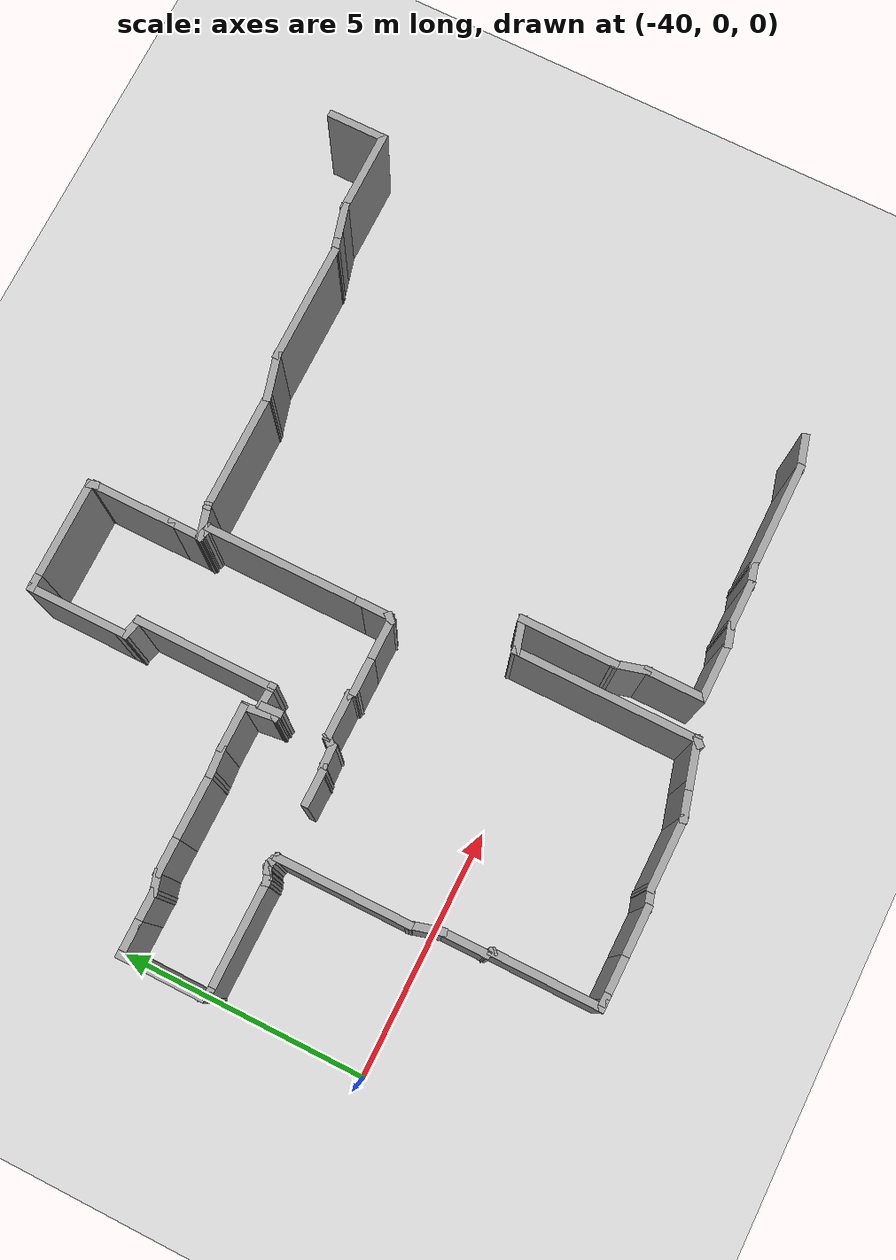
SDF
<sdf version="1.7">
 <world name="default">
  <model name="ground_plane">
   <static>1</static>
   <link name="link">
    <collision name="collision">
     <geometry><plane><normal>0 0 1</normal><size>100 100</size></plane></geometry>
     <surface><friction><ode><mu>100</mu><mu2>50</mu2></ode></friction></surface>
    </collision>
    <visual name="visual">
     <cast_shadows>0</cast_shadows>
     <geometry><plane><normal>0 0 1</normal><size>100 100</size></plane></geometry>
     <material>
      <script><uri>file://media/materials/scripts/gazebo.material</uri><name>Gazebo/Grey</name></script>
     </material>
    </visual>
   </link>
  </model>
  <model name="robovisor_env2">
   <pose>-12.9435 -0.483334 0 0 -0 3.14</pose>
   <link name="Wall_175">
    <collision name="Wall_175_Collision">
     <geometry><box><size>0.75 0.15 2.5</size></box></geometry>
     <pose>0 0 1.25 0 -0 0</pose>
    </collision>
    <visual name="Wall_175_Visual">
     <pose>0 0 1.25 0 -0 0</pose>
     <geometry><box><size>0.75 0.15 2.5</size></box></geometry>
     <material>
      <script><uri>file://media/materials/scripts/gazebo.material</uri><name>Gazebo/Grey</name></script>
      <ambient>1 1 1 1</ambient>
     </material>
     <meta><layer>0</layer></meta>
    </visual>
    <pose>13.3047 1.78761 0 0 -0 0.261799</pose>
   </link>
   <link name="Wall_176">
    <collision name="Wall_176_Collision">
     <geometry><box><size>2.25 0.15 2.5</size></box></geometry>
     <pose>0 0 1.25 0 -0 0</pose>
    </collision>
    <visual name="Wall_176_Visual">
     <pose>0 0 1.25 0 -0 0</pose>
     <geometry><box><size>2.25 0.15 2.5</size></box></geometry>
     <material>
      <script><uri>file://media/materials/scripts/gazebo.material</uri><name>Gazebo/Grey</name></script>
      <ambient>1 1 1 1</ambient>
     </material>
     <meta><layer>0</layer></meta>
    </visual>
    <pose>14.6445 1.86525 0 0 -0 0</pose>
   </link>
   <link name="Wall_177">
    <collision name="Wall_177_Collision">
     <geometry><box><size>0.5 0.15 2.5</size></box></geometry>
     <pose>0 0 1.25 0 -0 0</pose>
    </collision>
    <visual name="Wall_177_Visual">
     <pose>0 0 1.25 0 -0 0</pose>
     <geometry><box><size>0.5 0.15 2.5</size></box></geometry>
     <material>
      <script><uri>file://media/materials/scripts/gazebo.material</uri><name>Gazebo/Grey</name></script>
      <ambient>1 1 1 1</ambient>
     </material>
     <meta><layer>0</layer></meta>
    </visual>
    <pose>15.8635 1.91055 0 0 -0 0.261799</pose>
   </link>
   <link name="Wall_178">
    <collision name="Wall_178_Collision">
     <geometry><box><size>1 0.15 2.5</size></box></geometry>
     <pose>0 0 1.25 0 -0 0</pose>
    </collision>
    <visual name="Wall_178_Visual">
     <pose>0 0 1.25 0 -0 0</pose>
     <geometry><box><size>1 0.15 2.5</size></box></geometry>
     <material>
      <script><uri>file://media/materials/scripts/gazebo.material</uri><name>Gazebo/Grey</name></script>
      <ambient>1 1 1 1</ambient>
     </material>
     <meta><layer>0</layer></meta>
    </visual>
    <pose>16.4576 1.95584 0 0 -0 0</pose>
   </link>
   <link name="Wall_179">
    <collision name="Wall_179_Collision">
     <geometry><box><size>0.5 0.15 2.5</size></box></geometry>
     <pose>0 0 1.25 0 -0 0</pose>
    </collision>
    <visual name="Wall_179_Visual">
     <pose>0 0 1.25 0 -0 0</pose>
     <geometry><box><size>0.5 0.15 2.5</size></box></geometry>
     <material>
      <script><uri>file://media/materials/scripts/gazebo.material</uri><name>Gazebo/Grey</name></script>
      <ambient>1 1 1 1</ambient>
     </material>
     <meta><layer>0</layer></meta>
    </visual>
    <pose>17.0516 2.00113 0 0 -0 0.261799</pose>
   </link>
   <link name="Wall_180">
    <collision name="Wall_180_Collision">
     <geometry><box><size>1.25 0.15 2.5</size></box></geometry>
     <pose>0 0 1.25 0 -0 0</pose>
    </collision>
    <visual name="Wall_180_Visual">
     <pose>0 0 1.25 0 -0 0</pose>
     <geometry><box><size>1.25 0.15 2.5</size></box></geometry>
     <material>
      <script><uri>file://media/materials/scripts/gazebo.material</uri><name>Gazebo/Grey</name></script>
      <ambient>1 1 1 1</ambient>
     </material>
     <meta><layer>0</layer></meta>
    </visual>
    <pose>17.7706 2.04643 0 0 -0 0</pose>
   </link>
   <link name="Wall_181">
    <collision name="Wall_181_Collision">
     <geometry><box><size>1.25 0.15 2.5</size></box></geometry>
     <pose>0 0 1.25 0 -0 0</pose>
    </collision>
    <visual name="Wall_181_Visual">
     <pose>0 0 1.25 0 -0 0</pose>
     <geometry><box><size>1.25 0.15 2.5</size></box></geometry>
     <material>
      <script><uri>file://media/materials/scripts/gazebo.material</uri><name>Gazebo/Grey</name></script>
      <ambient>1 1 1 1</ambient>
     </material>
     <meta><layer>0</layer></meta>
    </visual>
    <pose>18.3206 1.49643 0 0 -0 -1.5708</pose>
   </link>
   <link name="Wall_182">
    <collision name="Wall_182_Collision">
     <geometry><box><size>0.75 0.15 2.5</size></box></geometry>
     <pose>0 0 1.25 0 -0 0</pose>
    </collision>
    <visual name="Wall_182_Visual">
     <pose>0 0 1.25 0 -0 0</pose>
     <geometry><box><size>0.75 0.15 2.5</size></box></geometry>
     <material>
      <script><uri>file://media/materials/scripts/gazebo.material</uri><name>Gazebo/Grey</name></script>
      <ambient>1 1 1 1</ambient>
     </material>
     <meta><layer>0</layer></meta>
    </visual>
    <pose>18.3983 0.656648 0 0 -0 -1.309</pose>
   </link>
   <link name="Wall_183">
    <collision name="Wall_183_Collision">
     <geometry><box><size>2 0.15 2.5</size></box></geometry>
     <pose>0 0 1.25 0 -0 0</pose>
    </collision>
    <visual name="Wall_183_Visual">
     <pose>0 0 1.25 0 -0 0</pose>
     <geometry><box><size>2 0.15 2.5</size></box></geometry>
     <material>
      <script><uri>file://media/materials/scripts/gazebo.material</uri><name>Gazebo/Grey</name></script>
      <ambient>1 1 1 1</ambient>
     </material>
     <meta><layer>0</layer></meta>
    </visual>
    <pose>18.4759 -0.55813 0 0 -0 -1.5708</pose>
   </link>
   <link name="Wall_184">
    <collision name="Wall_184_Collision">
     <geometry><box><size>0.75 0.15 2.5</size></box></geometry>
     <pose>0 0 1.25 0 -0 0</pose>
    </collision>
    <visual name="Wall_184_Visual">
     <pose>0 0 1.25 0 -0 0</pose>
     <geometry><box><size>0.75 0.15 2.5</size></box></geometry>
     <material>
      <script><uri>file://media/materials/scripts/gazebo.material</uri><name>Gazebo/Grey</name></script>
      <ambient>1 1 1 1</ambient>
     </material>
     <meta><layer>0</layer></meta>
    </visual>
    <pose>18.7657 -1.40548 0 0 -0 0.261799</pose>
   </link>
   <link name="Wall_185">
    <collision name="Wall_185_Collision">
     <geometry><box><size>3.75 0.15 2.5</size></box></geometry>
     <pose>0 0 1.25 0 -0 0</pose>
    </collision>
    <visual name="Wall_185_Visual">
     <pose>0 0 1.25 0 -0 0</pose>
     <geometry><box><size>3.75 0.15 2.5</size></box></geometry>
     <material>
      <script><uri>file://media/materials/scripts/gazebo.material</uri><name>Gazebo/Grey</name></script>
      <ambient>1 1 1 1</ambient>
     </material>
     <meta><layer>0</layer></meta>
    </visual>
    <pose>19.0555 0.472162 0 0 -0 1.5708</pose>
   </link>
   <link name="Wall_186">
    <collision name="Wall_186_Collision">
     <geometry><box><size>0.25 0.15 2.5</size></box></geometry>
     <pose>0 0 1.25 0 -0 0</pose>
    </collision>
    <visual name="Wall_186_Visual">
     <pose>0 0 1.25 0 -0 0</pose>
     <geometry><box><size>0.25 0.15 2.5</size></box></geometry>
     <material>
      <script><uri>file://media/materials/scripts/gazebo.material</uri><name>Gazebo/Grey</name></script>
      <ambient>1 1 1 1</ambient>
     </material>
     <meta><layer>0</layer></meta>
    </visual>
    <pose>19.0908 2.30752 0 0 -0 0.785398</pose>
   </link>
   <link name="Wall_188">
    <collision name="Wall_188_Collision">
     <geometry><box><size>1 0.15 2.5</size></box></geometry>
     <pose>0 0 1.25 0 -0 0</pose>
    </collision>
    <visual name="Wall_188_Visual">
     <pose>0 0 1.25 0 -0 0</pose>
     <geometry><box><size>1 0.15 2.5</size></box></geometry>
     <material>
      <script><uri>file://media/materials/scripts/gazebo.material</uri><name>Gazebo/Grey</name></script>
      <ambient>1 1 1 1</ambient>
     </material>
     <meta><layer>0</layer></meta>
    </visual>
    <pose>19.466 2.38216 0 0 -0 0.261799</pose>
   </link>
   <link name="Wall_189">
    <collision name="Wall_189_Collision">
     <geometry><box><size>0.75 0.15 2.5</size></box></geometry>
     <pose>0 0 1.25 0 -0 0</pose>
    </collision>
    <visual name="Wall_189_Visual">
     <pose>0 0 1.25 0 -0 0</pose>
     <geometry><box><size>0.75 0.15 2.5</size></box></geometry>
     <material>
      <script><uri>file://media/materials/scripts/gazebo.material</uri><name>Gazebo/Grey</name></script>
      <ambient>1 1 1 1</ambient>
     </material>
     <meta><layer>0</layer></meta>
    </visual>
    <pose>20.1663 2.5698 0 0 -0 0.261799</pose>
   </link>
   <link name="Wall_190">
    <collision name="Wall_190_Collision">
     <geometry><box><size>1.5 0.15 2.5</size></box></geometry>
     <pose>0 0 1.25 0 -0 0</pose>
    </collision>
    <visual name="Wall_190_Visual">
     <pose>0 0 1.25 0 -0 0</pose>
     <geometry><box><size>1.5 0.15 2.5</size></box></geometry>
     <material>
      <script><uri>file://media/materials/scripts/gazebo.material</uri><name>Gazebo/Grey</name></script>
      <ambient>1 1 1 1</ambient>
     </material>
     <meta><layer>0</layer></meta>
    </visual>
    <pose>21.1311 2.64745 0 0 -0 0</pose>
   </link>
   <link name="Wall_191">
    <collision name="Wall_191_Collision">
     <geometry><box><size>0.5 0.15 2.5</size></box></geometry>
     <pose>0 0 1.25 0 -0 0</pose>
    </collision>
    <visual name="Wall_191_Visual">
     <pose>0 0 1.25 0 -0 0</pose>
     <geometry><box><size>0.5 0.15 2.5</size></box></geometry>
     <material>
      <script><uri>file://media/materials/scripts/gazebo.material</uri><name>Gazebo/Grey</name></script>
      <ambient>1 1 1 1</ambient>
     </material>
     <meta><layer>0</layer></meta>
    </visual>
    <pose>21.9751 2.69274 0 0 -0 0.261799</pose>
   </link>
   <link name="Wall_192">
    <collision name="Wall_192_Collision">
     <geometry><box><size>1 0.15 2.5</size></box></geometry>
     <pose>0 0 1.25 0 -0 0</pose>
    </collision>
    <visual name="Wall_192_Visual">
     <pose>0 0 1.25 0 -0 0</pose>
     <geometry><box><size>1 0.15 2.5</size></box></geometry>
     <material>
      <script><uri>file://media/materials/scripts/gazebo.material</uri><name>Gazebo/Grey</name></script>
      <ambient>1 1 1 1</ambient>
     </material>
     <meta><layer>0</layer></meta>
    </visual>
    <pose>22.5691 2.73804 0 0 -0 0</pose>
   </link>
   <link name="Wall_193">
    <collision name="Wall_193_Collision">
     <geometry><box><size>1 0.15 2.5</size></box></geometry>
     <pose>0 0 1.25 0 -0 0</pose>
    </collision>
    <visual name="Wall_193_Visual">
     <pose>0 0 1.25 0 -0 0</pose>
     <geometry><box><size>1 0.15 2.5</size></box></geometry>
     <material>
      <script><uri>file://media/materials/scripts/gazebo.material</uri><name>Gazebo/Grey</name></script>
      <ambient>1 1 1 1</ambient>
     </material>
     <meta><layer>0</layer></meta>
    </visual>
    <pose>23.4191 2.73804 0 0 -0 0</pose>
   </link>
   <link name="Wall_194">
    <collision name="Wall_194_Collision">
     <geometry><box><size>0.25 0.15 2.5</size></box></geometry>
     <pose>0 0 1.25 0 -0 0</pose>
    </collision>
    <visual name="Wall_194_Visual">
     <pose>0 0 1.25 0 -0 0</pose>
     <geometry><box><size>0.25 0.15 2.5</size></box></geometry>
     <material>
      <script><uri>file://media/materials/scripts/gazebo.material</uri><name>Gazebo/Grey</name></script>
      <ambient>1 1 1 1</ambient>
     </material>
     <meta><layer>0</layer></meta>
    </visual>
    <pose>23.8941 2.73804 0 0 -0 0</pose>
   </link>
   <link name="Wall_195">
    <collision name="Wall_195_Collision">
     <geometry><box><size>0.25 0.15 2.5</size></box></geometry>
     <pose>0 0 1.25 0 -0 0</pose>
    </collision>
    <visual name="Wall_195_Visual">
     <pose>0 0 1.25 0 -0 0</pose>
     <geometry><box><size>0.25 0.15 2.5</size></box></geometry>
     <material>
      <script><uri>file://media/materials/scripts/gazebo.material</uri><name>Gazebo/Grey</name></script>
      <ambient>1 1 1 1</ambient>
     </material>
     <meta><layer>0</layer></meta>
    </visual>
    <pose>23.9941 2.73804 0 0 -0 0</pose>
   </link>
   <link name="Wall_196">
    <collision name="Wall_196_Collision">
     <geometry><box><size>2.25 0.15 2.5</size></box></geometry>
     <pose>0 0 1.25 0 -0 0</pose>
    </collision>
    <visual name="Wall_196_Visual">
     <pose>0 0 1.25 0 -0 0</pose>
     <geometry><box><size>2.25 0.15 2.5</size></box></geometry>
     <material>
      <script><uri>file://media/materials/scripts/gazebo.material</uri><name>Gazebo/Grey</name></script>
      <ambient>1 1 1 1</ambient>
     </material>
     <meta><layer>0</layer></meta>
    </visual>
    <pose>24.0441 1.68804 0 0 -0 -1.5708</pose>
   </link>
   <link name="Wall_197">
    <collision name="Wall_197_Collision">
     <geometry><box><size>0.25 0.15 2.5</size></box></geometry>
     <pose>0 0 1.25 0 -0 0</pose>
    </collision>
    <visual name="Wall_197_Visual">
     <pose>0 0 1.25 0 -0 0</pose>
     <geometry><box><size>0.25 0.15 2.5</size></box></geometry>
     <material>
      <script><uri>file://media/materials/scripts/gazebo.material</uri><name>Gazebo/Grey</name></script>
      <ambient>1 1 1 1</ambient>
     </material>
     <meta><layer>0</layer></meta>
    </visual>
    <pose>24.0795 0.602681 0 0 -0 -0.785398</pose>
   </link>
   <link name="Wall_198">
    <collision name="Wall_198_Collision">
     <geometry><box><size>1 0.15 2.5</size></box></geometry>
     <pose>0 0 1.25 0 -0 0</pose>
    </collision>
    <visual name="Wall_198_Visual">
     <pose>0 0 1.25 0 -0 0</pose>
     <geometry><box><size>1 0.15 2.5</size></box></geometry>
     <material>
      <script><uri>file://media/materials/scripts/gazebo.material</uri><name>Gazebo/Grey</name></script>
      <ambient>1 1 1 1</ambient>
     </material>
     <meta><layer>0</layer></meta>
    </visual>
    <pose>24.1149 0.142325 0 0 -0 -1.5708</pose>
   </link>
   <link name="Wall_199">
    <collision name="Wall_199_Collision">
     <geometry><box><size>0.75 0.15 2.5</size></box></geometry>
     <pose>0 0 1.25 0 -0 0</pose>
    </collision>
    <visual name="Wall_199_Visual">
     <pose>0 0 1.25 0 -0 0</pose>
     <geometry><box><size>0.75 0.15 2.5</size></box></geometry>
     <material>
      <script><uri>file://media/materials/scripts/gazebo.material</uri><name>Gazebo/Grey</name></script>
      <ambient>1 1 1 1</ambient>
     </material>
     <meta><layer>0</layer></meta>
    </visual>
    <pose>24.1925 -0.572452 0 0 -0 -1.309</pose>
   </link>
   <link name="Wall_201">
    <collision name="Wall_201_Collision">
     <geometry><box><size>2.75 0.15 2.5</size></box></geometry>
     <pose>0 0 1.25 0 -0 0</pose>
    </collision>
    <visual name="Wall_201_Visual">
     <pose>0 0 1.25 0 -0 0</pose>
     <geometry><box><size>2.75 0.15 2.5</size></box></geometry>
     <material>
      <script><uri>file://media/materials/scripts/gazebo.material</uri><name>Gazebo/Grey</name></script>
      <ambient>1 1 1 1</ambient>
     </material>
     <meta><layer>0</layer></meta>
    </visual>
    <pose>24.2701 -2.16223 0 0 -0 -1.5708</pose>
   </link>
   <link name="Wall_202">
    <collision name="Wall_202_Collision">
     <geometry><box><size>0.25 0.15 2.5</size></box></geometry>
     <pose>0 0 1.25 0 -0 0</pose>
    </collision>
    <visual name="Wall_202_Visual">
     <pose>0 0 1.25 0 -0 0</pose>
     <geometry><box><size>0.25 0.15 2.5</size></box></geometry>
     <material>
      <script><uri>file://media/materials/scripts/gazebo.material</uri><name>Gazebo/Grey</name></script>
      <ambient>1 1 1 1</ambient>
     </material>
     <meta><layer>0</layer></meta>
    </visual>
    <pose>24.3134 -3.48723 0 0 -0 -0.523599</pose>
   </link>
   <link name="Wall_203">
    <collision name="Wall_203_Collision">
     <geometry><box><size>0.25 0.15 2.5</size></box></geometry>
     <pose>0 0 1.25 0 -0 0</pose>
    </collision>
    <visual name="Wall_203_Visual">
     <pose>0 0 1.25 0 -0 0</pose>
     <geometry><box><size>0.25 0.15 2.5</size></box></geometry>
     <material>
      <script><uri>file://media/materials/scripts/gazebo.material</uri><name>Gazebo/Grey</name></script>
      <ambient>1 1 1 1</ambient>
     </material>
     <meta><layer>0</layer></meta>
    </visual>
    <pose>24.405 -3.52517 0 0 -0 -0.261799</pose>
   </link>
   <link name="Wall_204">
    <collision name="Wall_204_Collision">
     <geometry><box><size>0.25 0.15 2.5</size></box></geometry>
     <pose>0 0 1.25 0 -0 0</pose>
    </collision>
    <visual name="Wall_204_Visual">
     <pose>0 0 1.25 0 -0 0</pose>
     <geometry><box><size>0.25 0.15 2.5</size></box></geometry>
     <material>
      <script><uri>file://media/materials/scripts/gazebo.material</uri><name>Gazebo/Grey</name></script>
      <ambient>1 1 1 1</ambient>
     </material>
     <meta><layer>0</layer></meta>
    </visual>
    <pose>24.5016 -3.52517 0 0 -0 0.261799</pose>
   </link>
   <link name="Wall_205">
    <collision name="Wall_205_Collision">
     <geometry><box><size>0.25 0.15 2.5</size></box></geometry>
     <pose>0 0 1.25 0 -0 0</pose>
    </collision>
    <visual name="Wall_205_Visual">
     <pose>0 0 1.25 0 -0 0</pose>
     <geometry><box><size>0.25 0.15 2.5</size></box></geometry>
     <material>
      <script><uri>file://media/materials/scripts/gazebo.material</uri><name>Gazebo/Grey</name></script>
      <ambient>1 1 1 1</ambient>
     </material>
     <meta><layer>0</layer></meta>
    </visual>
    <pose>24.5932 -3.48723 0 0 -0 0.523599</pose>
   </link>
   <link name="Wall_206">
    <collision name="Wall_206_Collision">
     <geometry><box><size>0.25 0.15 2.5</size></box></geometry>
     <pose>0 0 1.25 0 -0 0</pose>
    </collision>
    <visual name="Wall_206_Visual">
     <pose>0 0 1.25 0 -0 0</pose>
     <geometry><box><size>0.25 0.15 2.5</size></box></geometry>
     <material>
      <script><uri>file://media/materials/scripts/gazebo.material</uri><name>Gazebo/Grey</name></script>
      <ambient>1 1 1 1</ambient>
     </material>
     <meta><layer>0</layer></meta>
    </visual>
    <pose>24.6848 -3.44929 0 0 -0 0.261799</pose>
   </link>
   <link name="Wall_207">
    <collision name="Wall_207_Collision">
     <geometry><box><size>2.25 0.15 2.5</size></box></geometry>
     <pose>0 0 1.25 0 -0 0</pose>
    </collision>
    <visual name="Wall_207_Visual">
     <pose>0 0 1.25 0 -0 0</pose>
     <geometry><box><size>2.25 0.15 2.5</size></box></geometry>
     <material>
      <script><uri>file://media/materials/scripts/gazebo.material</uri><name>Gazebo/Grey</name></script>
      <ambient>1 1 1 1</ambient>
     </material>
     <meta><layer>0</layer></meta>
    </visual>
    <pose>25.7831 -3.43635 0 0 -0 0</pose>
   </link>
   <link name="Wall_208">
    <collision name="Wall_208_Collision">
     <geometry><box><size>0.25 0.15 2.5</size></box></geometry>
     <pose>0 0 1.25 0 -0 0</pose>
    </collision>
    <visual name="Wall_208_Visual">
     <pose>0 0 1.25 0 -0 0</pose>
     <geometry><box><size>0.25 0.15 2.5</size></box></geometry>
     <material>
      <script><uri>file://media/materials/scripts/gazebo.material</uri><name>Gazebo/Grey</name></script>
      <ambient>1 1 1 1</ambient>
     </material>
     <meta><layer>0</layer></meta>
    </visual>
    <pose>26.8831 -3.43635 0 0 -0 0</pose>
   </link>
   <link name="Wall_209">
    <collision name="Wall_209_Collision">
     <geometry><box><size>0.25 0.15 2.5</size></box></geometry>
     <pose>0 0 1.25 0 -0 0</pose>
    </collision>
    <visual name="Wall_209_Visual">
     <pose>0 0 1.25 0 -0 0</pose>
     <geometry><box><size>0.25 0.15 2.5</size></box></geometry>
     <material>
      <script><uri>file://media/materials/scripts/gazebo.material</uri><name>Gazebo/Grey</name></script>
      <ambient>1 1 1 1</ambient>
     </material>
     <meta><layer>0</layer></meta>
    </visual>
    <pose>26.9581 -3.47965 0 0 -0 -1.0472</pose>
   </link>
   <link name="Wall_210">
    <collision name="Wall_210_Collision">
     <geometry><box><size>1.75 0.15 2.5</size></box></geometry>
     <pose>0 0 1.25 0 -0 0</pose>
    </collision>
    <visual name="Wall_210_Visual">
     <pose>0 0 1.25 0 -0 0</pose>
     <geometry><box><size>1.75 0.15 2.5</size></box></geometry>
     <material>
      <script><uri>file://media/materials/scripts/gazebo.material</uri><name>Gazebo/Grey</name></script>
      <ambient>1 1 1 1</ambient>
     </material>
     <meta><layer>0</layer></meta>
    </visual>
    <pose>26.9831 -4.32295 0 0 -0 -1.5708</pose>
   </link>
   <link name="Wall_211">
    <collision name="Wall_211_Collision">
     <geometry><box><size>0.15 0.15 2.5</size></box></geometry>
     <pose>0 0 1.25 0 -0 0</pose>
    </collision>
    <visual name="Wall_211_Visual">
     <pose>0 0 1.25 0 -0 0</pose>
     <geometry><box><size>0.15 0.15 2.5</size></box></geometry>
     <material>
      <script><uri>file://media/materials/scripts/gazebo.material</uri><name>Gazebo/Grey</name></script>
      <ambient>1 1 1 1</ambient>
     </material>
     <meta><layer>0</layer></meta>
    </visual>
    <pose>26.9831 -5.12295 0 0 -0 0</pose>
   </link>
   <link name="Wall_212">
    <collision name="Wall_212_Collision">
     <geometry><box><size>0.75 0.15 2.5</size></box></geometry>
     <pose>0 0 1.25 0 -0 0</pose>
    </collision>
    <visual name="Wall_212_Visual">
     <pose>0 0 1.25 0 -0 0</pose>
     <geometry><box><size>0.75 0.15 2.5</size></box></geometry>
     <material>
      <script><uri>file://media/materials/scripts/gazebo.material</uri><name>Gazebo/Grey</name></script>
      <ambient>1 1 1 1</ambient>
     </material>
     <meta><layer>0</layer></meta>
    </visual>
    <pose>26.6831 -5.12295 0 0 -0 3.14159</pose>
   </link>
   <link name="Wall_213">
    <collision name="Wall_213_Collision">
     <geometry><box><size>0.75 0.15 2.5</size></box></geometry>
     <pose>0 0 1.25 0 -0 0</pose>
    </collision>
    <visual name="Wall_213_Visual">
     <pose>0 0 1.25 0 -0 0</pose>
     <geometry><box><size>0.75 0.15 2.5</size></box></geometry>
     <material>
      <script><uri>file://media/materials/scripts/gazebo.material</uri><name>Gazebo/Grey</name></script>
      <ambient>1 1 1 1</ambient>
     </material>
     <meta><layer>0</layer></meta>
    </visual>
    <pose>26.0831 -5.12295 0 0 -0 3.14159</pose>
   </link>
   <link name="Wall_214">
    <collision name="Wall_214_Collision">
     <geometry><box><size>0.5 0.15 2.5</size></box></geometry>
     <pose>0 0 1.25 0 -0 0</pose>
    </collision>
    <visual name="Wall_214_Visual">
     <pose>0 0 1.25 0 -0 0</pose>
     <geometry><box><size>0.5 0.15 2.5</size></box></geometry>
     <material>
      <script><uri>file://media/materials/scripts/gazebo.material</uri><name>Gazebo/Grey</name></script>
      <ambient>1 1 1 1</ambient>
     </material>
     <meta><layer>0</layer></meta>
    </visual>
    <pose>25.6141 -5.16824 0 0 -0 -2.87979</pose>
   </link>
   <link name="Wall_215">
    <collision name="Wall_215_Collision">
     <geometry><box><size>0.75 0.15 2.5</size></box></geometry>
     <pose>0 0 1.25 0 -0 0</pose>
    </collision>
    <visual name="Wall_215_Visual">
     <pose>0 0 1.25 0 -0 0</pose>
     <geometry><box><size>0.75 0.15 2.5</size></box></geometry>
     <material>
      <script><uri>file://media/materials/scripts/gazebo.material</uri><name>Gazebo/Grey</name></script>
      <ambient>1 1 1 1</ambient>
     </material>
     <meta><layer>0</layer></meta>
    </visual>
    <pose>25.1451 -5.21354 0 0 -0 3.14159</pose>
   </link>
   <link name="Wall_216">
    <collision name="Wall_216_Collision">
     <geometry><box><size>1.5 0.15 2.5</size></box></geometry>
     <pose>0 0 1.25 0 -0 0</pose>
    </collision>
    <visual name="Wall_216_Visual">
     <pose>0 0 1.25 0 -0 0</pose>
     <geometry><box><size>1.5 0.15 2.5</size></box></geometry>
     <material>
      <script><uri>file://media/materials/scripts/gazebo.material</uri><name>Gazebo/Grey</name></script>
      <ambient>1 1 1 1</ambient>
     </material>
     <meta><layer>0</layer></meta>
    </visual>
    <pose>24.1701 -5.21354 0 0 -0 3.14159</pose>
   </link>
   <link name="Wall_217">
    <collision name="Wall_217_Collision">
     <geometry><box><size>0.644144 0.15 2.5</size></box></geometry>
     <pose>0 0 1.25 0 -0 0</pose>
    </collision>
    <visual name="Wall_217_Visual">
     <pose>0 0 1.25 0 -0 0</pose>
     <geometry><box><size>0.644144 0.15 2.5</size></box></geometry>
     <material>
      <script><uri>file://media/materials/scripts/gazebo.material</uri><name>Gazebo/Grey</name></script>
      <ambient>1 1 1 1</ambient>
     </material>
     <meta><layer>0</layer></meta>
    </visual>
    <pose>23.2487 -5.23251 0 0 -0 -3.06474</pose>
   </link>
   <link name="Wall_220">
    <collision name="Wall_220_Collision">
     <geometry><box><size>1 0.15 2.5</size></box></geometry>
     <pose>0 0 1.25 0 -0 0</pose>
    </collision>
    <visual name="Wall_220_Visual">
     <pose>0 0 1.25 0 -0 0</pose>
     <geometry><box><size>1 0.15 2.5</size></box></geometry>
     <material>
      <script><uri>file://media/materials/scripts/gazebo.material</uri><name>Gazebo/Grey</name></script>
      <ambient>1 1 1 1</ambient>
     </material>
     <meta><layer>0</layer></meta>
    </visual>
    <pose>22.5774 -5.25148 0 0 -0 0</pose>
   </link>
   <link name="Wall_223">
    <collision name="Wall_223_Collision">
     <geometry><box><size>0.530539 0.15 2.5</size></box></geometry>
     <pose>0 0 1.25 0 -0 0</pose>
    </collision>
    <visual name="Wall_223_Visual">
     <pose>0 0 1.25 0 -0 0</pose>
     <geometry><box><size>0.530539 0.15 2.5</size></box></geometry>
     <material>
      <script><uri>file://media/materials/scripts/gazebo.material</uri><name>Gazebo/Grey</name></script>
      <ambient>1 1 1 1</ambient>
     </material>
     <meta><layer>0</layer></meta>
    </visual>
    <pose>21.8014 -4.9761 0 0 -0 -0.049415</pose>
   </link>
   <link name="Wall_230">
    <collision name="Wall_230_Collision">
     <geometry><box><size>0.5 0.15 2.5</size></box></geometry>
     <pose>0 0 1.25 0 -0 0</pose>
    </collision>
    <visual name="Wall_230_Visual">
     <pose>0 0 1.25 0 -0 0</pose>
     <geometry><box><size>0.5 0.15 2.5</size></box></geometry>
     <material>
      <script><uri>file://media/materials/scripts/gazebo.material</uri><name>Gazebo/Grey</name></script>
      <ambient>1 1 1 1</ambient>
     </material>
     <meta><layer>0</layer></meta>
    </visual>
    <pose>21.9934 -4.8105 0 0 -0 1.63511</pose>
   </link>
   <link name="Wall_231">
    <collision name="Wall_231_Collision">
     <geometry><box><size>0.15 0.15 2.5</size></box></geometry>
     <pose>0 0 1.25 0 -0 0</pose>
    </collision>
    <visual name="Wall_231_Visual">
     <pose>0 0 1.25 0 -0 0</pose>
     <geometry><box><size>0.15 0.15 2.5</size></box></geometry>
     <material>
      <script><uri>file://media/materials/scripts/gazebo.material</uri><name>Gazebo/Grey</name></script>
      <ambient>1 1 1 1</ambient>
     </material>
     <meta><layer>0</layer></meta>
    </visual>
    <pose>21.9783 -4.6355 0 0 -0 0</pose>
   </link>
   <link name="Wall_232">
    <collision name="Wall_232_Collision">
     <geometry><box><size>0.25728 0.15 2.5</size></box></geometry>
     <pose>0 0 1.25 0 -0 0</pose>
    </collision>
    <visual name="Wall_232_Visual">
     <pose>0 0 1.25 0 -0 0</pose>
     <geometry><box><size>0.25728 0.15 2.5</size></box></geometry>
     <material>
      <script><uri>file://media/materials/scripts/gazebo.material</uri><name>Gazebo/Grey</name></script>
      <ambient>1 1 1 1</ambient>
     </material>
     <meta><layer>0</layer></meta>
    </visual>
    <pose>22.0304 -4.64844 0 0 -0 -0.243659</pose>
   </link>
   <link name="Wall_233">
    <collision name="Wall_233_Collision">
     <geometry><box><size>0.744228 0.15 2.5</size></box></geometry>
     <pose>0 0 1.25 0 -0 0</pose>
    </collision>
    <visual name="Wall_233_Visual">
     <pose>0 0 1.25 0 -0 0</pose>
     <geometry><box><size>0.744228 0.15 2.5</size></box></geometry>
     <material>
      <script><uri>file://media/materials/scripts/gazebo.material</uri><name>Gazebo/Grey</name></script>
      <ambient>1 1 1 1</ambient>
     </material>
     <meta><layer>0</layer></meta>
    </visual>
    <pose>22.1174 -4.95643 0 0 -0 -1.45283</pose>
   </link>
   <link name="Wall_235">
    <collision name="Wall_235_Collision">
     <geometry><box><size>0.75 0.15 2.5</size></box></geometry>
     <pose>0 0 1.25 0 -0 0</pose>
    </collision>
    <visual name="Wall_235_Visual">
     <pose>0 0 1.25 0 -0 0</pose>
     <geometry><box><size>0.75 0.15 2.5</size></box></geometry>
     <material>
      <script><uri>file://media/materials/scripts/gazebo.material</uri><name>Gazebo/Grey</name></script>
      <ambient>1 1 1 1</ambient>
     </material>
     <meta><layer>0</layer></meta>
    </visual>
    <pose>22.8922 -3.45167 0 0 -0 3.14159</pose>
   </link>
   <link name="Wall_236">
    <collision name="Wall_236_Collision">
     <geometry><box><size>0.25 0.15 2.5</size></box></geometry>
     <pose>0 0 1.25 0 -0 0</pose>
    </collision>
    <visual name="Wall_236_Visual">
     <pose>0 0 1.25 0 -0 0</pose>
     <geometry><box><size>0.25 0.15 2.5</size></box></geometry>
     <material>
      <script><uri>file://media/materials/scripts/gazebo.material</uri><name>Gazebo/Grey</name></script>
      <ambient>1 1 1 1</ambient>
     </material>
     <meta><layer>0</layer></meta>
    </visual>
    <pose>22.5439 -3.46462 0 0 -0 -2.87979</pose>
   </link>
   <link name="Wall_237">
    <collision name="Wall_237_Collision">
     <geometry><box><size>0.5586 0.15 2.5</size></box></geometry>
     <pose>0 0 1.25 0 -0 0</pose>
    </collision>
    <visual name="Wall_237_Visual">
     <pose>0 0 1.25 0 -0 0</pose>
     <geometry><box><size>0.5586 0.15 2.5</size></box></geometry>
     <material>
      <script><uri>file://media/materials/scripts/gazebo.material</uri><name>Gazebo/Grey</name></script>
      <ambient>1 1 1 1</ambient>
     </material>
     <meta><layer>0</layer></meta>
    </visual>
    <pose>22.2916 -3.4883 0 0 -0 -3.08896</pose>
   </link>
   <link name="Wall_243">
    <collision name="Wall_243_Collision">
     <geometry><box><size>0.25 0.15 2.5</size></box></geometry>
     <pose>0 0 1.25 0 -0 0</pose>
    </collision>
    <visual name="Wall_243_Visual">
     <pose>0 0 1.25 0 -0 0</pose>
     <geometry><box><size>0.25 0.15 2.5</size></box></geometry>
     <material>
      <script><uri>file://media/materials/scripts/gazebo.material</uri><name>Gazebo/Grey</name></script>
      <ambient>1 1 1 1</ambient>
     </material>
     <meta><layer>0</layer></meta>
    </visual>
    <pose>22.0626 -3.54235 0 0 -0 -2.0944</pose>
   </link>
   <link name="Wall_244">
    <collision name="Wall_244_Collision">
     <geometry><box><size>0.247008 0.15 2.5</size></box></geometry>
     <pose>0 0 1.25 0 -0 0</pose>
    </collision>
    <visual name="Wall_244_Visual">
     <pose>0 0 1.25 0 -0 0</pose>
     <geometry><box><size>0.247008 0.15 2.5</size></box></geometry>
     <material>
      <script><uri>file://media/materials/scripts/gazebo.material</uri><name>Gazebo/Grey</name></script>
      <ambient>1 1 1 1</ambient>
     </material>
     <meta><layer>0</layer></meta>
    </visual>
    <pose>22.0044 -3.62101 0 0 -0 -2.32485</pose>
   </link>
   <link name="Wall_245">
    <collision name="Wall_245_Collision">
     <geometry><box><size>1 0.15 2.5</size></box></geometry>
     <pose>0 0 1.25 0 -0 0</pose>
    </collision>
    <visual name="Wall_245_Visual">
     <pose>0 0 1.25 0 -0 0</pose>
     <geometry><box><size>1 0.15 2.5</size></box></geometry>
     <material>
      <script><uri>file://media/materials/scripts/gazebo.material</uri><name>Gazebo/Grey</name></script>
      <ambient>1 1 1 1</ambient>
     </material>
     <meta><layer>0</layer></meta>
    </visual>
    <pose>21.544 -3.65637 0 0 -0 3.14159</pose>
   </link>
   <link name="Wall_247">
    <collision name="Wall_247_Collision">
     <geometry><box><size>0.25 0.15 2.5</size></box></geometry>
     <pose>0 0 1.25 0 -0 0</pose>
    </collision>
    <visual name="Wall_247_Visual">
     <pose>0 0 1.25 0 -0 0</pose>
     <geometry><box><size>0.25 0.15 2.5</size></box></geometry>
     <material>
      <script><uri>file://media/materials/scripts/gazebo.material</uri><name>Gazebo/Grey</name></script>
      <ambient>1 1 1 1</ambient>
     </material>
     <meta><layer>0</layer></meta>
    </visual>
    <pose>21.0757 -3.63137 0 0 -0 2.61799</pose>
   </link>
   <link name="Wall_248">
    <collision name="Wall_248_Collision">
     <geometry><box><size>0.75 0.15 2.5</size></box></geometry>
     <pose>0 0 1.25 0 -0 0</pose>
    </collision>
    <visual name="Wall_248_Visual">
     <pose>0 0 1.25 0 -0 0</pose>
     <geometry><box><size>0.75 0.15 2.5</size></box></geometry>
     <material>
      <script><uri>file://media/materials/scripts/gazebo.material</uri><name>Gazebo/Grey</name></script>
      <ambient>1 1 1 1</ambient>
     </material>
     <meta><layer>0</layer></meta>
    </visual>
    <pose>20.7324 -3.60636 0 0 -0 3.14159</pose>
   </link>
   <link name="Wall_249">
    <collision name="Wall_249_Collision">
     <geometry><box><size>1 0.15 2.5</size></box></geometry>
     <pose>0 0 1.25 0 -0 0</pose>
    </collision>
    <visual name="Wall_249_Visual">
     <pose>0 0 1.25 0 -0 0</pose>
     <geometry><box><size>1 0.15 2.5</size></box></geometry>
     <material>
      <script><uri>file://media/materials/scripts/gazebo.material</uri><name>Gazebo/Grey</name></script>
      <ambient>1 1 1 1</ambient>
     </material>
     <meta><layer>0</layer></meta>
    </visual>
    <pose>20.0074 -3.60636 0 0 -0 3.14159</pose>
   </link>
   <link name="Wall_250">
    <collision name="Wall_250_Collision">
     <geometry><box><size>0.25 0.15 2.5</size></box></geometry>
     <pose>0 0 1.25 0 -0 0</pose>
    </collision>
    <visual name="Wall_250_Visual">
     <pose>0 0 1.25 0 -0 0</pose>
     <geometry><box><size>0.25 0.15 2.5</size></box></geometry>
     <material>
      <script><uri>file://media/materials/scripts/gazebo.material</uri><name>Gazebo/Grey</name></script>
      <ambient>1 1 1 1</ambient>
     </material>
     <meta><layer>0</layer></meta>
    </visual>
    <pose>19.5471 -3.64172 0 0 -0 -2.35619</pose>
   </link>
   <link name="Wall_251">
    <collision name="Wall_251_Collision">
     <geometry><box><size>0.75 0.15 2.5</size></box></geometry>
     <pose>0 0 1.25 0 -0 0</pose>
    </collision>
    <visual name="Wall_251_Visual">
     <pose>0 0 1.25 0 -0 0</pose>
     <geometry><box><size>0.75 0.15 2.5</size></box></geometry>
     <material>
      <script><uri>file://media/materials/scripts/gazebo.material</uri><name>Gazebo/Grey</name></script>
      <ambient>1 1 1 1</ambient>
     </material>
     <meta><layer>0</layer></meta>
    </visual>
    <pose>19.5117 -3.97708 0 0 -0 -1.5708</pose>
   </link>
   <link name="Wall_253">
    <collision name="Wall_253_Collision">
     <geometry><box><size>3.25 0.15 2.5</size></box></geometry>
     <pose>0 0 1.25 0 -0 0</pose>
    </collision>
    <visual name="Wall_253_Visual">
     <pose>0 0 1.25 0 -0 0</pose>
     <geometry><box><size>3.25 0.15 2.5</size></box></geometry>
     <material>
      <script><uri>file://media/materials/scripts/gazebo.material</uri><name>Gazebo/Grey</name></script>
      <ambient>1 1 1 1</ambient>
     </material>
     <meta><layer>0</layer></meta>
    </visual>
    <pose>19.5117 -5.82707 0 0 -0 -1.5708</pose>
   </link>
   <link name="Wall_254">
    <collision name="Wall_254_Collision">
     <geometry><box><size>0.25 0.15 2.5</size></box></geometry>
     <pose>0 0 1.25 0 -0 0</pose>
    </collision>
    <visual name="Wall_254_Visual">
     <pose>0 0 1.25 0 -0 0</pose>
     <geometry><box><size>0.25 0.15 2.5</size></box></geometry>
     <material>
      <script><uri>file://media/materials/scripts/gazebo.material</uri><name>Gazebo/Grey</name></script>
      <ambient>1 1 1 1</ambient>
     </material>
     <meta><layer>0</layer></meta>
    </visual>
    <pose>19.56 -7.39002 0 0 -0 -0.261799</pose>
   </link>
   <link name="Wall_255">
    <collision name="Wall_255_Collision">
     <geometry><box><size>0.293485 0.15 2.5</size></box></geometry>
     <pose>0 0 1.25 0 -0 0</pose>
    </collision>
    <visual name="Wall_255_Visual">
     <pose>0 0 1.25 0 -0 0</pose>
     <geometry><box><size>0.293485 0.15 2.5</size></box></geometry>
     <material>
      <script><uri>file://media/materials/scripts/gazebo.material</uri><name>Gazebo/Grey</name></script>
      <ambient>1 1 1 1</ambient>
     </material>
     <meta><layer>0</layer></meta>
    </visual>
    <pose>19.6763 -7.42576 0 0 -0 -0.323467</pose>
   </link>
   <link name="Wall_256">
    <collision name="Wall_256_Collision">
     <geometry><box><size>0.75 0.15 2.5</size></box></geometry>
     <pose>0 0 1.25 0 -0 0</pose>
    </collision>
    <visual name="Wall_256_Visual">
     <pose>0 0 1.25 0 -0 0</pose>
     <geometry><box><size>0.75 0.15 2.5</size></box></geometry>
     <material>
      <script><uri>file://media/materials/scripts/gazebo.material</uri><name>Gazebo/Grey</name></script>
      <ambient>1 1 1 1</ambient>
     </material>
     <meta><layer>0</layer></meta>
    </visual>
    <pose>19.7312 -7.74199 0 0 -0 -1.5708</pose>
   </link>
   <link name="Wall_258">
    <collision name="Wall_258_Collision">
     <geometry><box><size>1.75 0.15 2.5</size></box></geometry>
     <pose>0 0 1.25 0 -0 0</pose>
    </collision>
    <visual name="Wall_258_Visual">
     <pose>0 0 1.25 0 -0 0</pose>
     <geometry><box><size>1.75 0.15 2.5</size></box></geometry>
     <material>
      <script><uri>file://media/materials/scripts/gazebo.material</uri><name>Gazebo/Grey</name></script>
      <ambient>1 1 1 1</ambient>
     </material>
     <meta><layer>0</layer></meta>
    </visual>
    <pose>19.7312 -8.84199 0 0 -0 -1.5708</pose>
   </link>
   <link name="Wall_259">
    <collision name="Wall_259_Collision">
     <geometry><box><size>0.25 0.15 2.5</size></box></geometry>
     <pose>0 0 1.25 0 -0 0</pose>
    </collision>
    <visual name="Wall_259_Visual">
     <pose>0 0 1.25 0 -0 0</pose>
     <geometry><box><size>0.25 0.15 2.5</size></box></geometry>
     <material>
      <script><uri>file://media/materials/scripts/gazebo.material</uri><name>Gazebo/Grey</name></script>
      <ambient>1 1 1 1</ambient>
     </material>
     <meta><layer>0</layer></meta>
    </visual>
    <pose>19.7441 -9.69029 0 0 -0 -1.309</pose>
   </link>
   <link name="Wall_260">
    <collision name="Wall_260_Collision">
     <geometry><box><size>2 0.15 2.5</size></box></geometry>
     <pose>0 0 1.25 0 -0 0</pose>
    </collision>
    <visual name="Wall_260_Visual">
     <pose>0 0 1.25 0 -0 0</pose>
     <geometry><box><size>2 0.15 2.5</size></box></geometry>
     <material>
      <script><uri>file://media/materials/scripts/gazebo.material</uri><name>Gazebo/Grey</name></script>
      <ambient>1 1 1 1</ambient>
     </material>
     <meta><layer>0</layer></meta>
    </visual>
    <pose>20.6821 -9.73858 0 0 -0 0</pose>
   </link>
   <link name="Wall_261">
    <collision name="Wall_261_Collision">
     <geometry><box><size>0.5 0.15 2.5</size></box></geometry>
     <pose>0 0 1.25 0 -0 0</pose>
    </collision>
    <visual name="Wall_261_Visual">
     <pose>0 0 1.25 0 -0 0</pose>
     <geometry><box><size>0.5 0.15 2.5</size></box></geometry>
     <material>
      <script><uri>file://media/materials/scripts/gazebo.material</uri><name>Gazebo/Grey</name></script>
      <ambient>1 1 1 1</ambient>
     </material>
     <meta><layer>0</layer></meta>
    </visual>
    <pose>21.7821 -9.73858 0 0 -0 0</pose>
   </link>
   <link name="Wall_262">
    <collision name="Wall_262_Collision">
     <geometry><box><size>2 0.15 2.5</size></box></geometry>
     <pose>0 0 1.25 0 -0 0</pose>
    </collision>
    <visual name="Wall_262_Visual">
     <pose>0 0 1.25 0 -0 0</pose>
     <geometry><box><size>2 0.15 2.5</size></box></geometry>
     <material>
      <script><uri>file://media/materials/scripts/gazebo.material</uri><name>Gazebo/Grey</name></script>
      <ambient>1 1 1 1</ambient>
     </material>
     <meta><layer>0</layer></meta>
    </visual>
    <pose>21.9571 -8.81358 0 0 -0 1.5708</pose>
   </link>
   <link name="Wall_263">
    <collision name="Wall_263_Collision">
     <geometry><box><size>0.25 0.15 2.5</size></box></geometry>
     <pose>0 0 1.25 0 -0 0</pose>
    </collision>
    <visual name="Wall_263_Visual">
     <pose>0 0 1.25 0 -0 0</pose>
     <geometry><box><size>0.25 0.15 2.5</size></box></geometry>
     <material>
      <script><uri>file://media/materials/scripts/gazebo.material</uri><name>Gazebo/Grey</name></script>
      <ambient>1 1 1 1</ambient>
     </material>
     <meta><layer>0</layer></meta>
    </visual>
    <pose>21.9571 -7.83858 0 0 -0 1.5708</pose>
   </link>
   <link name="Wall_264">
    <collision name="Wall_264_Collision">
     <geometry><box><size>0.5 0.15 2.5</size></box></geometry>
     <pose>0 0 1.25 0 -0 0</pose>
    </collision>
    <visual name="Wall_264_Visual">
     <pose>0 0 1.25 0 -0 0</pose>
     <geometry><box><size>0.5 0.15 2.5</size></box></geometry>
     <material>
      <script><uri>file://media/materials/scripts/gazebo.material</uri><name>Gazebo/Grey</name></script>
      <ambient>1 1 1 1</ambient>
     </material>
     <meta><layer>0</layer></meta>
    </visual>
    <pose>21.7881 -7.74329 0 0 -0 2.87979</pose>
   </link>
   <link name="Wall_266">
    <collision name="Wall_266_Collision">
     <geometry><box><size>2.88137 0.15 2.5</size></box></geometry>
     <pose>0 0 1.25 0 -0 0</pose>
    </collision>
    <visual name="Wall_266_Visual">
     <pose>0 0 1.25 0 -0 0</pose>
     <geometry><box><size>2.88137 0.15 2.5</size></box></geometry>
     <material>
      <script><uri>file://media/materials/scripts/gazebo.material</uri><name>Gazebo/Grey</name></script>
      <ambient>1 1 1 1</ambient>
     </material>
     <meta><layer>0</layer></meta>
    </visual>
    <pose>21.6218 -6.33235 0 0 -0 1.56877</pose>
   </link>
   <link name="Wall_268">
    <collision name="Wall_268_Collision">
     <geometry><box><size>0.75 0.15 2.5</size></box></geometry>
     <pose>0 0 1.25 0 -0 0</pose>
    </collision>
    <visual name="Wall_268_Visual">
     <pose>0 0 1.25 0 -0 0</pose>
     <geometry><box><size>0.75 0.15 2.5</size></box></geometry>
     <material>
      <script><uri>file://media/materials/scripts/gazebo.material</uri><name>Gazebo/Grey</name></script>
      <ambient>1 1 1 1</ambient>
     </material>
     <meta><layer>0</layer></meta>
    </visual>
    <pose>19.4414 -7.51964 0 0 -0 -2.87979</pose>
   </link>
   <link name="Wall_269">
    <collision name="Wall_269_Collision">
     <geometry><box><size>2.5 0.15 2.5</size></box></geometry>
     <pose>0 0 1.25 0 -0 0</pose>
    </collision>
    <visual name="Wall_269_Visual">
     <pose>0 0 1.25 0 -0 0</pose>
     <geometry><box><size>2.5 0.15 2.5</size></box></geometry>
     <material>
      <script><uri>file://media/materials/scripts/gazebo.material</uri><name>Gazebo/Grey</name></script>
      <ambient>1 1 1 1</ambient>
     </material>
     <meta><layer>0</layer></meta>
    </visual>
    <pose>17.9767 -7.59728 0 0 -0 3.14159</pose>
   </link>
   <link name="Wall_270">
    <collision name="Wall_270_Collision">
     <geometry><box><size>1 0.15 2.5</size></box></geometry>
     <pose>0 0 1.25 0 -0 0</pose>
    </collision>
    <visual name="Wall_270_Visual">
     <pose>0 0 1.25 0 -0 0</pose>
     <geometry><box><size>1 0.15 2.5</size></box></geometry>
     <material>
      <script><uri>file://media/materials/scripts/gazebo.material</uri><name>Gazebo/Grey</name></script>
      <ambient>1 1 1 1</ambient>
     </material>
     <meta><layer>0</layer></meta>
    </visual>
    <pose>16.3911 -7.70728 0 0 -0 -2.87979</pose>
   </link>
   <link name="Wall_271">
    <collision name="Wall_271_Collision">
     <geometry><box><size>2.5 0.15 2.5</size></box></geometry>
     <pose>0 0 1.25 0 -0 0</pose>
    </collision>
    <visual name="Wall_271_Visual">
     <pose>0 0 1.25 0 -0 0</pose>
     <geometry><box><size>2.5 0.15 2.5</size></box></geometry>
     <material>
      <script><uri>file://media/materials/scripts/gazebo.material</uri><name>Gazebo/Grey</name></script>
      <ambient>1 1 1 1</ambient>
     </material>
     <meta><layer>0</layer></meta>
    </visual>
    <pose>14.8056 -7.81728 0 0 -0 3.14159</pose>
   </link>
   <link name="Wall_272">
    <collision name="Wall_272_Collision">
     <geometry><box><size>0.5 0.15 2.5</size></box></geometry>
     <pose>0 0 1.25 0 -0 0</pose>
    </collision>
    <visual name="Wall_272_Visual">
     <pose>0 0 1.25 0 -0 0</pose>
     <geometry><box><size>0.5 0.15 2.5</size></box></geometry>
     <material>
      <script><uri>file://media/materials/scripts/gazebo.material</uri><name>Gazebo/Grey</name></script>
      <ambient>1 1 1 1</ambient>
     </material>
     <meta><layer>0</layer></meta>
    </visual>
    <pose>13.4616 -7.86257 0 0 -0 -2.87979</pose>
   </link>
   <link name="Wall_273">
    <collision name="Wall_273_Collision">
     <geometry><box><size>0.75 0.15 2.5</size></box></geometry>
     <pose>0 0 1.25 0 -0 0</pose>
    </collision>
    <visual name="Wall_273_Visual">
     <pose>0 0 1.25 0 -0 0</pose>
     <geometry><box><size>0.75 0.15 2.5</size></box></geometry>
     <material>
      <script><uri>file://media/materials/scripts/gazebo.material</uri><name>Gazebo/Grey</name></script>
      <ambient>1 1 1 1</ambient>
     </material>
     <meta><layer>0</layer></meta>
    </visual>
    <pose>13.0028 -7.98551 0 0 -0 -2.87979</pose>
   </link>
   <link name="Wall_274">
    <collision name="Wall_274_Collision">
     <geometry><box><size>1.75 0.15 2.5</size></box></geometry>
     <pose>0 0 1.25 0 -0 0</pose>
    </collision>
    <visual name="Wall_274_Visual">
     <pose>0 0 1.25 0 -0 0</pose>
     <geometry><box><size>1.75 0.15 2.5</size></box></geometry>
     <material>
      <script><uri>file://media/materials/scripts/gazebo.material</uri><name>Gazebo/Grey</name></script>
      <ambient>1 1 1 1</ambient>
     </material>
     <meta><layer>0</layer></meta>
    </visual>
    <pose>11.913 -8.06316 0 0 -0 3.14159</pose>
   </link>
   <link name="Wall_275">
    <collision name="Wall_275_Collision">
     <geometry><box><size>1.25 0.15 2.5</size></box></geometry>
     <pose>0 0 1.25 0 -0 0</pose>
    </collision>
    <visual name="Wall_275_Visual">
     <pose>0 0 1.25 0 -0 0</pose>
     <geometry><box><size>1.25 0.15 2.5</size></box></geometry>
     <material>
      <script><uri>file://media/materials/scripts/gazebo.material</uri><name>Gazebo/Grey</name></script>
      <ambient>1 1 1 1</ambient>
     </material>
     <meta><layer>0</layer></meta>
    </visual>
    <pose>11.113 -8.61316 0 0 -0 -1.5708</pose>
   </link>
   <static>1</static>
  </model>
 </world>
</sdf>
